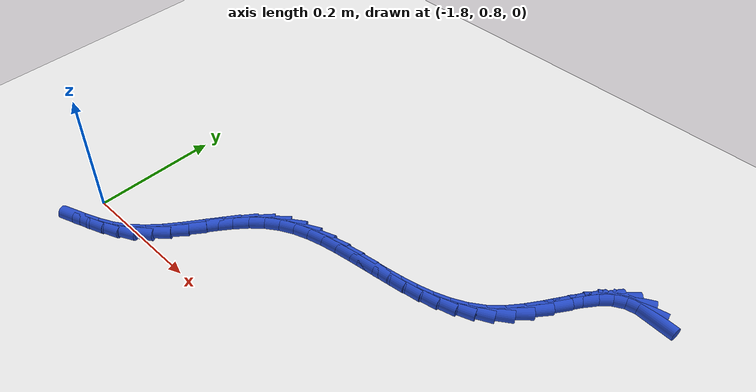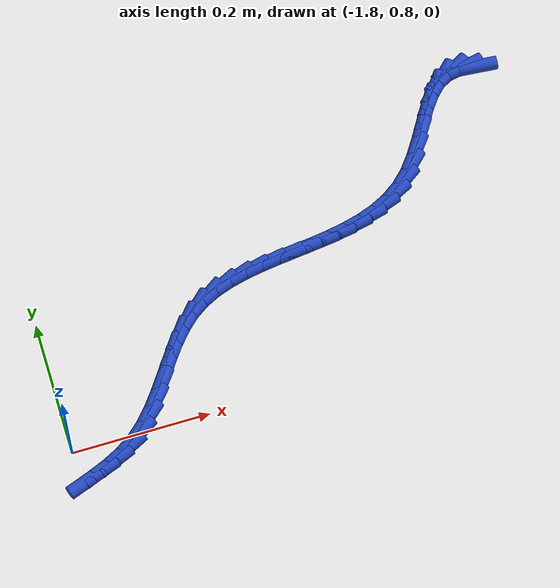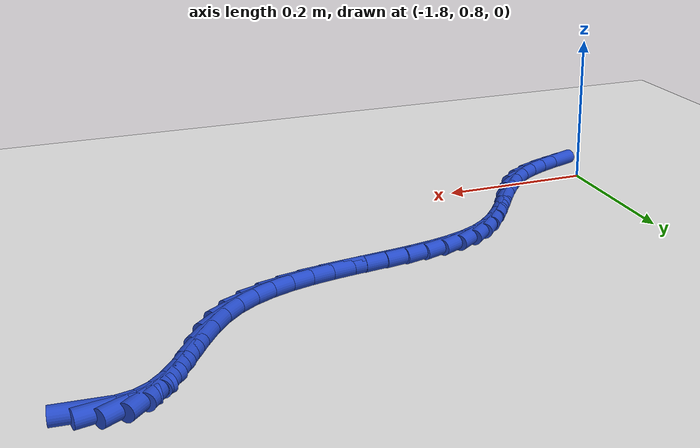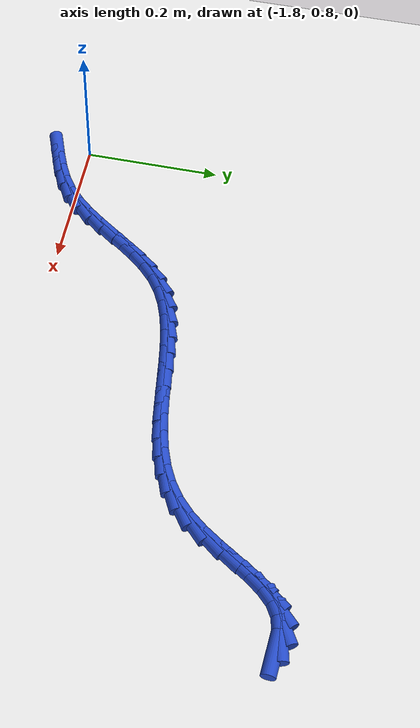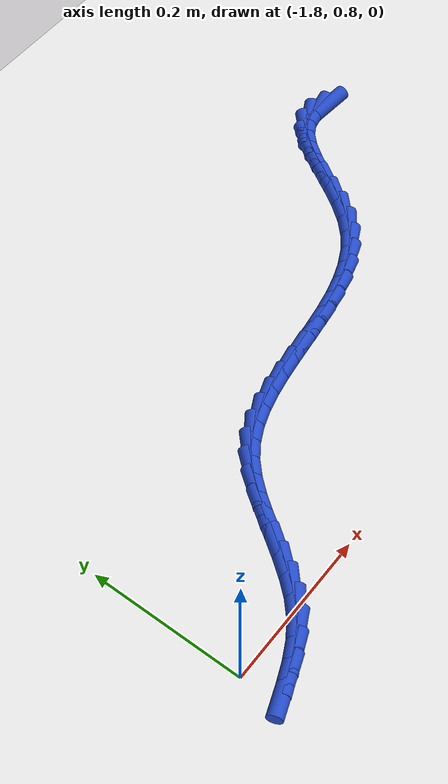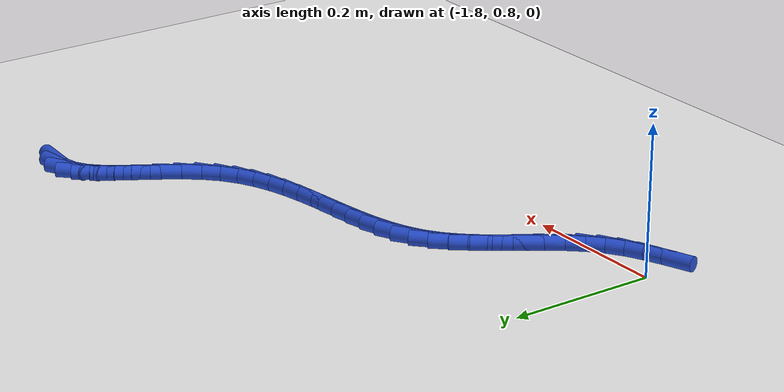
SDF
<sdf version="1.6">
 <world name="default">
  <model name="ground_plane">
   <static>1</static>
   <link name="link">
    <collision name="collision">
     <geometry><plane><normal>0 0 1</normal><size>100 100</size></plane></geometry>
     <surface><friction><ode><mu>100</mu><mu2>50</mu2></ode></friction></surface>
    </collision>
    <visual name="visual">
     <cast_shadows>0</cast_shadows>
     <geometry><plane><normal>0 0 1</normal><size>100 100</size></plane></geometry>
     <material>
      <script><uri>file://media/materials/scripts/gazebo.material</uri><name>Gazebo/WhiteGlow</name></script>
     </material>
    </visual>
   </link>
  </model>
  <model name="line">
   <link name="link_70">
    <pose>-1.0777169131853017 1.2074749397187605 0.01 0 1.57 -0.07745867055720179</pose>
    <collision name="collision">
     <geometry><cylinder><radius>0.01</radius><length>0.08</length></cylinder></geometry>
    </collision>
    <visual name="visual">
     <material>
      <script><name>Gazebo/Blue</name><uri>file://media/materials/scripts/gazebo.material</uri></script>
     </material>
     <geometry><cylinder><radius>0.01</radius><length>0.08</length></cylinder></geometry>
    </visual>
   </link>
   <link name="link_71">
    <pose>-1.0968320578793884 1.2089585417294595 0.01 0 1.57 0.20329674877784998</pose>
    <collision name="collision">
     <geometry><cylinder><radius>0.01</radius><length>0.08</length></cylinder></geometry>
    </collision>
    <visual name="visual">
     <material>
      <script><name>Gazebo/Blue</name><uri>file://media/materials/scripts/gazebo.material</uri></script>
     </material>
     <geometry><cylinder><radius>0.01</radius><length>0.08</length></cylinder></geometry>
    </visual>
   </link>
   <link name="link_72">
    <pose>-1.1146994377258237 1.2052752785752883 0.01 0 1.57 0.5207765552972224</pose>
    <collision name="collision">
     <geometry><cylinder><radius>0.01</radius><length>0.08</length></cylinder></geometry>
    </collision>
    <visual name="visual">
     <material>
      <script><name>Gazebo/Blue</name><uri>file://media/materials/scripts/gazebo.material</uri></script>
     </material>
     <geometry><cylinder><radius>0.01</radius><length>0.08</length></cylinder></geometry>
    </visual>
   </link>
   <link name="link_73">
    <pose>-1.1311916424319997 1.195815458470249 0.01 0 1.57 0.7834575162184493</pose>
    <collision name="collision">
     <geometry><cylinder><radius>0.01</radius><length>0.08</length></cylinder></geometry>
    </collision>
    <visual name="visual">
     <material>
      <script><name>Gazebo/Blue</name><uri>file://media/materials/scripts/gazebo.material</uri></script>
     </material>
     <geometry><cylinder><radius>0.01</radius><length>0.08</length></cylinder></geometry>
    </visual>
   </link>
   <link name="link_74">
    <pose>-1.1464036653279823 1.1806623636283209 0.01 0 1.57 0.932386171864083</pose>
    <collision name="collision">
     <geometry><cylinder><radius>0.01</radius><length>0.08</length></cylinder></geometry>
    </collision>
    <visual name="visual">
     <material>
      <script><name>Gazebo/Blue</name><uri>file://media/materials/scripts/gazebo.material</uri></script>
     </material>
     <geometry><cylinder><radius>0.01</radius><length>0.08</length></cylinder></geometry>
    </visual>
   </link>
   <link name="link_75">
    <pose>-1.160847428183159 1.1611983583774643 0.01 0 1.57 1.0016892071600865</pose>
    <collision name="collision">
     <geometry><cylinder><radius>0.01</radius><length>0.08</length></cylinder></geometry>
    </collision>
    <visual name="visual">
     <material>
      <script><name>Gazebo/Blue</name><uri>file://media/materials/scripts/gazebo.material</uri></script>
     </material>
     <geometry><cylinder><radius>0.01</radius><length>0.08</length></cylinder></geometry>
    </visual>
   </link>
   <link name="link_76">
    <pose>-1.1750807244399772 1.138948735818045 0.01 0 1.57 1.0156636988688674</pose>
    <collision name="collision">
     <geometry><cylinder><radius>0.01</radius><length>0.08</length></cylinder></geometry>
    </collision>
    <visual name="visual">
     <material>
      <script><name>Gazebo/Blue</name><uri>file://media/materials/scripts/gazebo.material</uri></script>
     </material>
     <geometry><cylinder><radius>0.01</radius><length>0.08</length></cylinder></geometry>
    </visual>
   </link>
   <link name="link_77">
    <pose>-1.1896613475408875 1.1154387890504303 0.01 0 1.57 0.9831186835354228</pose>
    <collision name="collision">
     <geometry><cylinder><radius>0.01</radius><length>0.08</length></cylinder></geometry>
    </collision>
    <visual name="visual">
     <material>
      <script><name>Gazebo/Blue</name><uri>file://media/materials/scripts/gazebo.material</uri></script>
     </material>
     <geometry><cylinder><radius>0.01</radius><length>0.08</length></cylinder></geometry>
    </visual>
   </link>
   <link name="link_78">
    <pose>-1.2051470909283384 1.0921938111749847 0.01 0 1.57 0.9021990723939273</pose>
    <collision name="collision">
     <geometry><cylinder><radius>0.01</radius><length>0.08</length></cylinder></geometry>
    </collision>
    <visual name="visual">
     <material>
      <script><name>Gazebo/Blue</name><uri>file://media/materials/scripts/gazebo.material</uri></script>
     </material>
     <geometry><cylinder><radius>0.01</radius><length>0.08</length></cylinder></geometry>
    </visual>
   </link>
   <link name="link_79">
    <pose>-1.2220957480447778 1.0707390952920761 0.01 0 1.57 0.7653752254384857</pose>
    <collision name="collision">
     <geometry><cylinder><radius>0.01</radius><length>0.08</length></cylinder></geometry>
    </collision>
    <visual name="visual">
     <material>
      <script><name>Gazebo/Blue</name><uri>file://media/materials/scripts/gazebo.material</uri></script>
     </material>
     <geometry><cylinder><radius>0.01</radius><length>0.08</length></cylinder></geometry>
    </visual>
   </link>
   <link name="link_80">
    <pose>-1.2410393216244726 1.0525393396941023 0.01 0 1.57 0.6050468437623263</pose>
    <collision name="collision">
     <geometry><cylinder><radius>0.01</radius><length>0.08</length></cylinder></geometry>
    </collision>
    <visual name="visual">
     <material>
      <script><name>Gazebo/Blue</name><uri>file://media/materials/scripts/gazebo.material</uri></script>
     </material>
     <geometry><cylinder><radius>0.01</radius><length>0.08</length></cylinder></geometry>
    </visual>
   </link>
   <link name="link_81">
    <pose>-1.2620598767846136 1.0380021222830187 0.01 0 1.57 0.46248123983199807</pose>
    <collision name="collision">
     <geometry><cylinder><radius>0.01</radius><length>0.08</length></cylinder></geometry>
    </collision>
    <visual name="visual">
     <material>
      <script><name>Gazebo/Blue</name><uri>file://media/materials/scripts/gazebo.material</uri></script>
     </material>
     <geometry><cylinder><radius>0.01</radius><length>0.08</length></cylinder></geometry>
    </visual>
   </link>
   <link name="link_82">
    <pose>-1.2848571349775566 1.02663671135315 0.01 0 1.57 0.3447802142320116</pose>
    <collision name="collision">
     <geometry><cylinder><radius>0.01</radius><length>0.08</length></cylinder></geometry>
    </collision>
    <visual name="visual">
     <material>
      <script><name>Gazebo/Blue</name><uri>file://media/materials/scripts/gazebo.material</uri></script>
     </material>
     <geometry><cylinder><radius>0.01</radius><length>0.08</length></cylinder></geometry>
    </visual>
   </link>
   <link name="link_83">
    <pose>-1.3091186581411147 1.017923806636705 0.01 0 1.57 0.2533441621984295</pose>
    <collision name="collision">
     <geometry><cylinder><radius>0.01</radius><length>0.08</length></cylinder></geometry>
    </collision>
    <visual name="visual">
     <material>
      <script><name>Gazebo/Blue</name><uri>file://media/materials/scripts/gazebo.material</uri></script>
     </material>
     <geometry><cylinder><radius>0.01</radius><length>0.08</length></cylinder></geometry>
    </visual>
   </link>
   <link name="link_84">
    <pose>-1.3345320082130996 1.0113441078658896 0.01 0 1.57 0.18694465350337885</pose>
    <collision name="collision">
     <geometry><cylinder><radius>0.01</radius><length>0.08</length></cylinder></geometry>
    </collision>
    <visual name="visual">
     <material>
      <script><name>Gazebo/Blue</name><uri>file://media/materials/scripts/gazebo.material</uri></script>
     </material>
     <geometry><cylinder><radius>0.01</radius><length>0.08</length></cylinder></geometry>
    </visual>
   </link>
   <link name="link_85">
    <pose>-1.360784747131323 1.0063783147729102 0.01 0 1.57 0.1435623732843166</pose>
    <collision name="collision">
     <geometry><cylinder><radius>0.01</radius><length>0.08</length></cylinder></geometry>
    </collision>
    <visual name="visual">
     <material>
      <script><name>Gazebo/Blue</name><uri>file://media/materials/scripts/gazebo.material</uri></script>
     </material>
     <geometry><cylinder><radius>0.01</radius><length>0.08</length></cylinder></geometry>
    </visual>
   </link>
   <link name="link_86">
    <pose>-1.387564436833598 1.0025071270899741 0.01 0 1.57 0.12149459859273143</pose>
    <collision name="collision">
     <geometry><cylinder><radius>0.01</radius><length>0.08</length></cylinder></geometry>
    </collision>
    <visual name="visual">
     <material>
      <script><name>Gazebo/Blue</name><uri>file://media/materials/scripts/gazebo.material</uri></script>
     </material>
     <geometry><cylinder><radius>0.01</radius><length>0.08</length></cylinder></geometry>
    </visual>
   </link>
   <link name="link_87">
    <pose>-1.4145586392577363 0.9992112445492884 0.01 0 1.57 0.11988061695273057</pose>
    <collision name="collision">
     <geometry><cylinder><radius>0.01</radius><length>0.08</length></cylinder></geometry>
    </collision>
    <visual name="visual">
     <material>
      <script><name>Gazebo/Blue</name><uri>file://media/materials/scripts/gazebo.material</uri></script>
     </material>
     <geometry><cylinder><radius>0.01</radius><length>0.08</length></cylinder></geometry>
    </visual>
   </link>
   <link name="link_88">
    <pose>-1.44145491634155 0.9959713668830605 0.01 0 1.57 0.1389161610265466</pose>
    <collision name="collision">
     <geometry><cylinder><radius>0.01</radius><length>0.08</length></cylinder></geometry>
    </collision>
    <visual name="visual">
     <material>
      <script><name>Gazebo/Blue</name><uri>file://media/materials/scripts/gazebo.material</uri></script>
     </material>
     <geometry><cylinder><radius>0.01</radius><length>0.08</length></cylinder></geometry>
    </visual>
   </link>
   <link name="link_89">
    <pose>-1.4679408300228518 0.9922681938234967 0.01 0 1.57 0.1799123574051523</pose>
    <collision name="collision">
     <geometry><cylinder><radius>0.01</radius><length>0.08</length></cylinder></geometry>
    </collision>
    <visual name="visual">
     <material>
      <script><name>Gazebo/Blue</name><uri>file://media/materials/scripts/gazebo.material</uri></script>
     </material>
     <geometry><cylinder><radius>0.01</radius><length>0.08</length></cylinder></geometry>
    </visual>
   </link>
   <link name="link_90">
    <pose>-1.4937039422394525 0.9875824251028037 0.01 0 1.57 0.2451954670421788</pose>
    <collision name="collision">
     <geometry><cylinder><radius>0.01</radius><length>0.08</length></cylinder></geometry>
    </collision>
    <visual name="visual">
     <material>
      <script><name>Gazebo/Blue</name><uri>file://media/materials/scripts/gazebo.material</uri></script>
     </material>
     <geometry><cylinder><radius>0.01</radius><length>0.08</length></cylinder></geometry>
    </visual>
   </link>
   <link name="link_91">
    <pose>-1.518431814929166 0.9813947604531889 0.01 0 1.57 0.3376572694538913</pose>
    <collision name="collision">
     <geometry><cylinder><radius>0.01</radius><length>0.08</length></cylinder></geometry>
    </collision>
    <visual name="visual">
     <material>
      <script><name>Gazebo/Blue</name><uri>file://media/materials/scripts/gazebo.material</uri></script>
     </material>
     <geometry><cylinder><radius>0.01</radius><length>0.08</length></cylinder></geometry>
    </visual>
   </link>
   <link name="link_92">
    <pose>-1.5418120100298032 0.9731858996068591 0.01 0 1.57 0.4595626196547924</pose>
    <collision name="collision">
     <geometry><cylinder><radius>0.01</radius><length>0.08</length></cylinder></geometry>
    </collision>
    <visual name="visual">
     <material>
      <script><name>Gazebo/Blue</name><uri>file://media/materials/scripts/gazebo.material</uri></script>
     </material>
     <geometry><cylinder><radius>0.01</radius><length>0.08</length></cylinder></geometry>
    </visual>
   </link>
   <link name="link_93">
    <pose>-1.5635320894791769 0.9624365422960214 0.01 0 1.57 0.6098709199928124</pose>
    <collision name="collision">
     <geometry><cylinder><radius>0.01</radius><length>0.08</length></cylinder></geometry>
    </collision>
    <visual name="visual">
     <material>
      <script><name>Gazebo/Blue</name><uri>file://media/materials/scripts/gazebo.material</uri></script>
     </material>
     <geometry><cylinder><radius>0.01</radius><length>0.08</length></cylinder></geometry>
    </visual>
   </link>
   <link name="link_94">
    <pose>-1.5832845546365406 0.9486349665986167 0.01 0 1.57 0.7595031828140276</pose>
    <collision name="collision">
     <geometry><cylinder><radius>0.01</radius><length>0.08</length></cylinder></geometry>
    </collision>
    <visual name="visual">
     <material>
      <script><name>Gazebo/Blue</name><uri>file://media/materials/scripts/gazebo.material</uri></script>
     </material>
     <geometry><cylinder><radius>0.01</radius><length>0.08</length></cylinder></geometry>
    </visual>
   </link>
   <link name="link_95">
    <pose>-1.6010721860141806 0.9317454987944869 0.01 0 1.57 0.8680691210100316</pose>
    <collision name="collision">
     <geometry><cylinder><radius>0.01</radius><length>0.08</length></cylinder></geometry>
    </collision>
    <visual name="visual">
     <material>
      <script><name>Gazebo/Blue</name><uri>file://media/materials/scripts/gazebo.material</uri></script>
     </material>
     <geometry><cylinder><radius>0.01</radius><length>0.08</length></cylinder></geometry>
    </visual>
   </link>
   <link name="link_96">
    <pose>-1.6173868726158818 0.9124828836677076 0.01 0 1.57 0.9354635525153538</pose>
    <collision name="collision">
     <geometry><cylinder><radius>0.01</radius><length>0.08</length></cylinder></geometry>
    </collision>
    <visual name="visual">
     <material>
      <script><name>Gazebo/Blue</name><uri>file://media/materials/scripts/gazebo.material</uri></script>
     </material>
     <geometry><cylinder><radius>0.01</radius><length>0.08</length></cylinder></geometry>
    </visual>
   </link>
   <link name="link_97">
    <pose>-1.6327635475830449 0.8916279068050109 0.01 0 1.57 0.9660734696757735</pose>
    <collision name="collision">
     <geometry><cylinder><radius>0.01</radius><length>0.08</length></cylinder></geometry>
    </collision>
    <visual name="visual">
     <material>
      <script><name>Gazebo/Blue</name><uri>file://media/materials/scripts/gazebo.material</uri></script>
     </material>
     <geometry><cylinder><radius>0.01</radius><length>0.08</length></cylinder></geometry>
    </visual>
   </link>
   <link name="link_98">
    <pose>-1.6477371440570696 0.869961353793129 0.01 0 1.57 0.962632687417327</pose>
    <collision name="collision">
     <geometry><cylinder><radius>0.01</radius><length>0.08</length></cylinder></geometry>
    </collision>
    <visual name="visual">
     <material>
      <script><name>Gazebo/Blue</name><uri>file://media/materials/scripts/gazebo.material</uri></script>
     </material>
     <geometry><cylinder><radius>0.01</radius><length>0.08</length></cylinder></geometry>
    </visual>
   </link>
   <link name="link_99">
    <pose>-1.6628425951793562 0.848264010218793 0.01 0 1.57 0.9254119365591829</pose>
    <collision name="collision">
     <geometry><cylinder><radius>0.01</radius><length>0.08</length></cylinder></geometry>
    </collision>
    <visual name="visual">
     <material>
      <script><name>Gazebo/Blue</name><uri>file://media/materials/scripts/gazebo.material</uri></script>
     </material>
     <geometry><cylinder><radius>0.01</radius><length>0.08</length></cylinder></geometry>
    </visual>
   </link>
   <link name="link_100">
    <pose>-1.6786148340913054 0.8273166616687355 0.01 0 1.57 0.8524197165650484</pose>
    <collision name="collision">
     <geometry><cylinder><radius>0.01</radius><length>0.08</length></cylinder></geometry>
    </collision>
    <visual name="visual">
     <material>
      <script><name>Gazebo/Blue</name><uri>file://media/materials/scripts/gazebo.material</uri></script>
     </material>
     <geometry><cylinder><radius>0.01</radius><length>0.08</length></cylinder></geometry>
    </visual>
   </link>
   <link name="link_101">
    <pose>-1.695588793934316 0.8079000937296881 0.01 0 1.57 0.7405982115511388</pose>
    <collision name="collision">
     <geometry><cylinder><radius>0.01</radius><length>0.08</length></cylinder></geometry>
    </collision>
    <visual name="visual">
     <material>
      <script><name>Gazebo/Blue</name><uri>file://media/materials/scripts/gazebo.material</uri></script>
     </material>
     <geometry><cylinder><radius>0.01</radius><length>0.08</length></cylinder></geometry>
    </visual>
   </link>
   <link name="link_102">
    <pose>-1.7142994078497886 0.7907950919883829 0.01 0 1.57 0.5956343291426367</pose>
    <collision name="collision">
     <geometry><cylinder><radius>0.01</radius><length>0.08</length></cylinder></geometry>
    </collision>
    <visual name="visual">
     <material>
      <script><name>Gazebo/Blue</name><uri>file://media/materials/scripts/gazebo.material</uri></script>
     </material>
     <geometry><cylinder><radius>0.01</radius><length>0.08</length></cylinder></geometry>
    </visual>
   </link>
   <link name="link_103">
    <pose>-1.7351803474695675 0.776643100739465 0.01 0 1.57 0.47121433834489385</pose>
    <collision name="collision">
     <geometry><cylinder><radius>0.01</radius><length>0.08</length></cylinder></geometry>
    </collision>
    <visual name="visual">
     <material>
      <script><name>Gazebo/Blue</name><uri>file://media/materials/scripts/gazebo.material</uri></script>
     </material>
     <geometry><cylinder><radius>0.01</radius><length>0.08</length></cylinder></geometry>
    </visual>
   </link>
   <link name="link_104">
    <pose>-1.7579185997511468 0.7650580859419138 0.01 0 1.57 0.3906966224123261</pose>
    <collision name="collision">
     <geometry><cylinder><radius>0.01</radius><length>0.08</length></cylinder></geometry>
    </collision>
    <visual name="visual">
     <material>
      <script><name>Gazebo/Blue</name><uri>file://media/materials/scripts/gazebo.material</uri></script>
     </material>
     <geometry><cylinder><radius>0.01</radius><length>0.08</length></cylinder></geometry>
    </visual>
   </link>
   <link name="link_105">
    <pose>-1.7818671498869627 0.7551944091333836 0.01 0 1.57 0.35155361723877343</pose>
    <collision name="collision">
     <geometry><cylinder><radius>0.01</radius><length>0.08</length></cylinder></geometry>
    </collision>
    <visual name="visual">
     <material>
      <script><name>Gazebo/Blue</name><uri>file://media/materials/scripts/gazebo.material</uri></script>
     </material>
     <geometry><cylinder><radius>0.01</radius><length>0.08</length></cylinder></geometry>
    </visual>
   </link>
  </model>
 </world>
</sdf>
